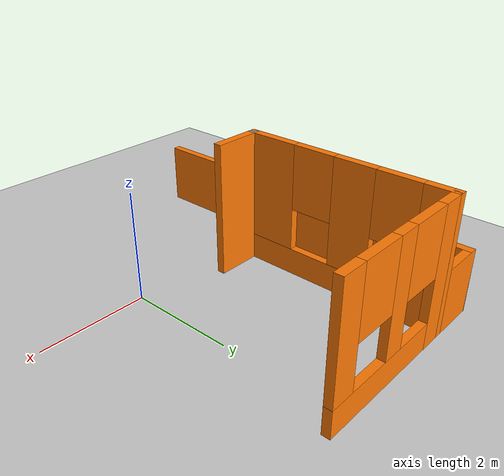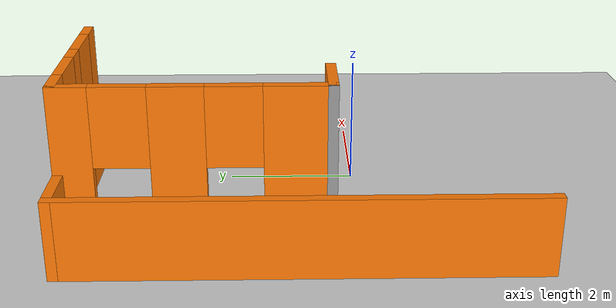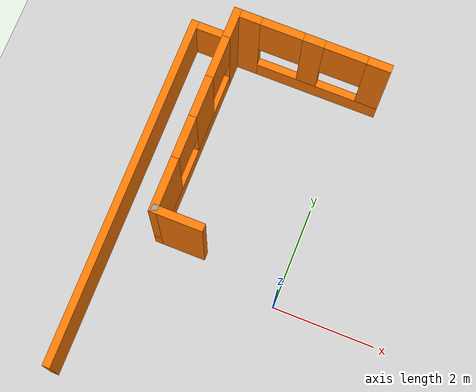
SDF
<sdf version="1.6">
 <world name="default">
  <model name="ground_plane">
   <static>1</static>
   <link name="link">
    <collision name="collision">
     <geometry><plane><normal>0 0 1</normal><size>100 100</size></plane></geometry>
     <surface>
      <contact><collide_bitmask>65535</collide_bitmask></contact>
      <friction><ode><mu>100</mu><mu2>50</mu2></ode></friction>
     </surface>
    </collision>
    <visual name="visual">
     <cast_shadows>0</cast_shadows>
     <geometry><plane><normal>0 0 1</normal><size>100 100</size></plane></geometry>
     <material>
      <script><uri>file://media/materials/scripts/gazebo.material</uri><name>Gazebo/Grey</name></script>
     </material>
    </visual>
   </link>
  </model>
  <model name="myhouse">
   <link name="Wall_1">
    <pose>-3.27785 1.94213 0 0 0 -1.5708</pose>
    <visual name="Wall_1_Visual">
     <pose>0 0 0.6 0 -0 0</pose>
     <geometry><box><size>7 0.15 1.2</size></box></geometry>
     <material>
      <script><uri>file://media/materials/scripts/gazebo.material</uri><name>Gazebo/Grey</name></script>
      <ambient>0.996078 0.47451 0.0196078 1</ambient>
      <shader type="pixel"/>
      <diffuse>0.7 0.7 0.7 1</diffuse>
      <specular>0.01 0.01 0.01 1</specular>
      <emissive>0 0 0 1</emissive>
     </material>
     <meta><layer>0</layer></meta>
    </visual>
    <collision name="Wall_1_Collision">
     <pose>0 0 0.6 0 -0 0</pose>
     <geometry><box><size>7 0.15 1.2</size></box></geometry>
     <surface>
      <friction>
       <ode><mu>1</mu><mu2>1</mu2><fdir1>0 0 0</fdir1><slip1>0</slip1><slip2>0</slip2></ode>
       <torsional>
        <coefficient>1</coefficient>
        <patch_radius>0</patch_radius>
        <surface_radius>0</surface_radius>
        <use_patch_radius>1</use_patch_radius>
        <ode><slip>0</slip></ode>
       </torsional>
      </friction>
      <bounce><restitution_coefficient>0</restitution_coefficient><threshold>1e+06</threshold></bounce>
      <contact>
       <collide_without_contact>0</collide_without_contact>
       <collide_without_contact_bitmask>1</collide_without_contact_bitmask>
       <collide_bitmask>1</collide_bitmask>
       <ode>
        <soft_cfm>0</soft_cfm>
        <soft_erp>0.2</soft_erp>
        <kp>1e+13</kp>
        <kd>1</kd>
        <max_vel>0.01</max_vel>
        <min_depth>0</min_depth>
       </ode>
       <bullet>
        <split_impulse>1</split_impulse>
        <split_impulse_penetration_threshold>-0.01</split_impulse_penetration_threshold>
        <soft_cfm>0</soft_cfm>
        <soft_erp>0.2</soft_erp>
        <kp>1e+13</kp>
        <kd>1</kd>
       </bullet>
      </contact>
     </surface>
    </collision>
   </link>
   <link name="Wall_17">
    <pose>-2.42773 3.44225 0 0 0 -1.57073</pose>
    <visual name="Wall_17_Visual_0">
     <pose>-1.71028 0 1.25 0 -0 0</pose>
     <geometry><box><size>0.579442 0.15 2.5</size></box></geometry>
     <material>
      <script><uri>file://media/materials/scripts/gazebo.material</uri><name>Gazebo/Grey</name></script>
      <ambient>0.996078 0.47451 0.0196078 1</ambient>
      <shader type="pixel"/>
      <diffuse>0.7 0.7 0.7 1</diffuse>
      <specular>0.01 0.01 0.01 1</specular>
      <emissive>0 0 0 1</emissive>
     </material>
     <meta><layer>0</layer></meta>
    </visual>
    <visual name="Wall_17_Visual_1">
     <pose>0.289721 0 0.25 0 -0 0</pose>
     <geometry><box><size>3.42056 0.15 0.5</size></box></geometry>
     <material>
      <script><uri>file://media/materials/scripts/gazebo.material</uri><name>Gazebo/Grey</name></script>
      <ambient>0.996078 0.47451 0.0196078 1</ambient>
      <shader type="pixel"/>
      <diffuse>0.7 0.7 0.7 1</diffuse>
      <specular>0.01 0.01 0.01 1</specular>
      <emissive>0 0 0 1</emissive>
     </material>
     <meta><layer>0</layer></meta>
    </visual>
    <visual name="Wall_17_Visual_2">
     <pose>-0.229084 0 1.5 0 -0 0</pose>
     <geometry><box><size>0.782948 0.15 2</size></box></geometry>
     <material>
      <script><uri>file://media/materials/scripts/gazebo.material</uri><name>Gazebo/Grey</name></script>
      <ambient>0.996078 0.47451 0.0196078 1</ambient>
      <shader type="pixel"/>
      <diffuse>0.7 0.7 0.7 1</diffuse>
      <specular>0.01 0.01 0.01 1</specular>
      <emissive>0 0 0 1</emissive>
     </material>
     <meta><layer>0</layer></meta>
    </visual>
    <visual name="Wall_17_Visual_3">
     <pose>1.4812 0 1.5 0 -0 0</pose>
     <geometry><box><size>1.03761 0.15 2</size></box></geometry>
     <material>
      <script><uri>file://media/materials/scripts/gazebo.material</uri><name>Gazebo/Grey</name></script>
      <ambient>0.996078 0.47451 0.0196078 1</ambient>
      <shader type="pixel"/>
      <diffuse>0.7 0.7 0.7 1</diffuse>
      <specular>0.01 0.01 0.01 1</specular>
      <emissive>0 0 0 1</emissive>
     </material>
     <meta><layer>0</layer></meta>
    </visual>
    <visual name="Wall_17_Visual_4">
     <pose>-1.02056 0 1.9 0 -0 0</pose>
     <geometry><box><size>0.8 0.15 1.2</size></box></geometry>
     <material>
      <script><uri>file://media/materials/scripts/gazebo.material</uri><name>Gazebo/Grey</name></script>
      <ambient>0.996078 0.47451 0.0196078 1</ambient>
      <shader type="pixel"/>
      <diffuse>0.7 0.7 0.7 1</diffuse>
      <specular>0.01 0.01 0.01 1</specular>
      <emissive>0 0 0 1</emissive>
     </material>
     <meta><layer>0</layer></meta>
    </visual>
    <visual name="Wall_17_Visual_5">
     <pose>0.562389 0 1.9 0 -0 0</pose>
     <geometry><box><size>0.8 0.15 1.2</size></box></geometry>
     <material>
      <script><uri>file://media/materials/scripts/gazebo.material</uri><name>Gazebo/Grey</name></script>
      <ambient>0.996078 0.47451 0.0196078 1</ambient>
      <shader type="pixel"/>
      <diffuse>0.7 0.7 0.7 1</diffuse>
      <specular>0.01 0.01 0.01 1</specular>
      <emissive>0 0 0 1</emissive>
     </material>
     <meta><layer>0</layer></meta>
    </visual>
    <collision name="Wall_17_Collision_0">
     <pose>-1.71028 0 1.25 0 -0 0</pose>
     <geometry><box><size>0.579442 0.15 2.5</size></box></geometry>
     <surface>
      <friction>
       <ode><mu>1</mu><mu2>1</mu2><fdir1>0 0 0</fdir1><slip1>0</slip1><slip2>0</slip2></ode>
       <torsional>
        <coefficient>1</coefficient>
        <patch_radius>0</patch_radius>
        <surface_radius>0</surface_radius>
        <use_patch_radius>1</use_patch_radius>
        <ode><slip>0</slip></ode>
       </torsional>
      </friction>
      <bounce><restitution_coefficient>0</restitution_coefficient><threshold>1e+06</threshold></bounce>
      <contact>
       <collide_without_contact>0</collide_without_contact>
       <collide_without_contact_bitmask>1</collide_without_contact_bitmask>
       <collide_bitmask>1</collide_bitmask>
       <ode>
        <soft_cfm>0</soft_cfm>
        <soft_erp>0.2</soft_erp>
        <kp>1e+13</kp>
        <kd>1</kd>
        <max_vel>0.01</max_vel>
        <min_depth>0</min_depth>
       </ode>
       <bullet>
        <split_impulse>1</split_impulse>
        <split_impulse_penetration_threshold>-0.01</split_impulse_penetration_threshold>
        <soft_cfm>0</soft_cfm>
        <soft_erp>0.2</soft_erp>
        <kp>1e+13</kp>
        <kd>1</kd>
       </bullet>
      </contact>
     </surface>
    </collision>
    <collision name="Wall_17_Collision_5">
     <pose>0.562389 0 1.9 0 -0 0</pose>
     <geometry><box><size>0.8 0.15 1.2</size></box></geometry>
     <surface>
      <friction>
       <ode><mu>1</mu><mu2>1</mu2><fdir1>0 0 0</fdir1><slip1>0</slip1><slip2>0</slip2></ode>
       <torsional>
        <coefficient>1</coefficient>
        <patch_radius>0</patch_radius>
        <surface_radius>0</surface_radius>
        <use_patch_radius>1</use_patch_radius>
        <ode><slip>0</slip></ode>
       </torsional>
      </friction>
      <bounce><restitution_coefficient>0</restitution_coefficient><threshold>1e+06</threshold></bounce>
      <contact>
       <collide_without_contact>0</collide_without_contact>
       <collide_without_contact_bitmask>1</collide_without_contact_bitmask>
       <collide_bitmask>1</collide_bitmask>
       <ode>
        <soft_cfm>0</soft_cfm>
        <soft_erp>0.2</soft_erp>
        <kp>1e+13</kp>
        <kd>1</kd>
        <max_vel>0.01</max_vel>
        <min_depth>0</min_depth>
       </ode>
       <bullet>
        <split_impulse>1</split_impulse>
        <split_impulse_penetration_threshold>-0.01</split_impulse_penetration_threshold>
        <soft_cfm>0</soft_cfm>
        <soft_erp>0.2</soft_erp>
        <kp>1e+13</kp>
        <kd>1</kd>
       </bullet>
      </contact>
     </surface>
    </collision>
    <collision name="Wall_17_Collision_3">
     <pose>1.4812 0 1.5 0 -0 0</pose>
     <geometry><box><size>1.03761 0.15 2</size></box></geometry>
     <surface>
      <friction>
       <ode><mu>1</mu><mu2>1</mu2><fdir1>0 0 0</fdir1><slip1>0</slip1><slip2>0</slip2></ode>
       <torsional>
        <coefficient>1</coefficient>
        <patch_radius>0</patch_radius>
        <surface_radius>0</surface_radius>
        <use_patch_radius>1</use_patch_radius>
        <ode><slip>0</slip></ode>
       </torsional>
      </friction>
      <bounce><restitution_coefficient>0</restitution_coefficient><threshold>1e+06</threshold></bounce>
      <contact>
       <collide_without_contact>0</collide_without_contact>
       <collide_without_contact_bitmask>1</collide_without_contact_bitmask>
       <collide_bitmask>1</collide_bitmask>
       <ode>
        <soft_cfm>0</soft_cfm>
        <soft_erp>0.2</soft_erp>
        <kp>1e+13</kp>
        <kd>1</kd>
        <max_vel>0.01</max_vel>
        <min_depth>0</min_depth>
       </ode>
       <bullet>
        <split_impulse>1</split_impulse>
        <split_impulse_penetration_threshold>-0.01</split_impulse_penetration_threshold>
        <soft_cfm>0</soft_cfm>
        <soft_erp>0.2</soft_erp>
        <kp>1e+13</kp>
        <kd>1</kd>
       </bullet>
      </contact>
     </surface>
    </collision>
    <collision name="Wall_17_Collision_1">
     <pose>0.289721 0 0.25 0 -0 0</pose>
     <geometry><box><size>3.42056 0.15 0.5</size></box></geometry>
     <surface>
      <friction>
       <ode><mu>1</mu><mu2>1</mu2><fdir1>0 0 0</fdir1><slip1>0</slip1><slip2>0</slip2></ode>
       <torsional>
        <coefficient>1</coefficient>
        <patch_radius>0</patch_radius>
        <surface_radius>0</surface_radius>
        <use_patch_radius>1</use_patch_radius>
        <ode><slip>0</slip></ode>
       </torsional>
      </friction>
      <bounce><restitution_coefficient>0</restitution_coefficient><threshold>1e+06</threshold></bounce>
      <contact>
       <collide_without_contact>0</collide_without_contact>
       <collide_without_contact_bitmask>1</collide_without_contact_bitmask>
       <collide_bitmask>1</collide_bitmask>
       <ode>
        <soft_cfm>0</soft_cfm>
        <soft_erp>0.2</soft_erp>
        <kp>1e+13</kp>
        <kd>1</kd>
        <max_vel>0.01</max_vel>
        <min_depth>0</min_depth>
       </ode>
       <bullet>
        <split_impulse>1</split_impulse>
        <split_impulse_penetration_threshold>-0.01</split_impulse_penetration_threshold>
        <soft_cfm>0</soft_cfm>
        <soft_erp>0.2</soft_erp>
        <kp>1e+13</kp>
        <kd>1</kd>
       </bullet>
      </contact>
     </surface>
    </collision>
    <collision name="Wall_17_Collision_2">
     <pose>-0.229084 0 1.5 0 -0 0</pose>
     <geometry><box><size>0.782948 0.15 2</size></box></geometry>
     <surface>
      <friction>
       <ode><mu>1</mu><mu2>1</mu2><fdir1>0 0 0</fdir1><slip1>0</slip1><slip2>0</slip2></ode>
       <torsional>
        <coefficient>1</coefficient>
        <patch_radius>0</patch_radius>
        <surface_radius>0</surface_radius>
        <use_patch_radius>1</use_patch_radius>
        <ode><slip>0</slip></ode>
       </torsional>
      </friction>
      <bounce><restitution_coefficient>0</restitution_coefficient><threshold>1e+06</threshold></bounce>
      <contact>
       <collide_without_contact>0</collide_without_contact>
       <collide_without_contact_bitmask>1</collide_without_contact_bitmask>
       <collide_bitmask>1</collide_bitmask>
       <ode>
        <soft_cfm>0</soft_cfm>
        <soft_erp>0.2</soft_erp>
        <kp>1e+13</kp>
        <kd>1</kd>
        <max_vel>0.01</max_vel>
        <min_depth>0</min_depth>
       </ode>
       <bullet>
        <split_impulse>1</split_impulse>
        <split_impulse_penetration_threshold>-0.01</split_impulse_penetration_threshold>
        <soft_cfm>0</soft_cfm>
        <soft_erp>0.2</soft_erp>
        <kp>1e+13</kp>
        <kd>1</kd>
       </bullet>
      </contact>
     </surface>
    </collision>
    <collision name="Wall_17_Collision_4">
     <pose>-1.02056 0 1.9 0 -0 0</pose>
     <geometry><box><size>0.8 0.15 1.2</size></box></geometry>
     <surface>
      <friction>
       <ode><mu>1</mu><mu2>1</mu2><fdir1>0 0 0</fdir1><slip1>0</slip1><slip2>0</slip2></ode>
       <torsional>
        <coefficient>1</coefficient>
        <patch_radius>0</patch_radius>
        <surface_radius>0</surface_radius>
        <use_patch_radius>1</use_patch_radius>
        <ode><slip>0</slip></ode>
       </torsional>
      </friction>
      <bounce><restitution_coefficient>0</restitution_coefficient><threshold>1e+06</threshold></bounce>
      <contact>
       <collide_without_contact>0</collide_without_contact>
       <collide_without_contact_bitmask>1</collide_without_contact_bitmask>
       <collide_bitmask>1</collide_bitmask>
       <ode>
        <soft_cfm>0</soft_cfm>
        <soft_erp>0.2</soft_erp>
        <kp>1e+13</kp>
        <kd>1</kd>
        <max_vel>0.01</max_vel>
        <min_depth>0</min_depth>
       </ode>
       <bullet>
        <split_impulse>1</split_impulse>
        <split_impulse_penetration_threshold>-0.01</split_impulse_penetration_threshold>
        <soft_cfm>0</soft_cfm>
        <soft_erp>0.2</soft_erp>
        <kp>1e+13</kp>
        <kd>1</kd>
       </bullet>
      </contact>
     </surface>
    </collision>
   </link>
   <link name="Wall_25">
    <pose>-2.42762 1.51737 0 0 -0 0</pose>
    <visual name="Wall_25_Visual">
     <pose>0 0 1.25 0 -0 0</pose>
     <geometry><box><size>0.15 0.15 2.5</size></box></geometry>
     <material>
      <script><uri>file://media/materials/scripts/gazebo.material</uri><name>Gazebo/Grey</name></script>
      <ambient>1 1 1 1</ambient>
      <shader type="pixel"/>
      <diffuse>0.7 0.7 0.7 1</diffuse>
      <specular>0.01 0.01 0.01 1</specular>
      <emissive>0 0 0 1</emissive>
     </material>
     <meta><layer>0</layer></meta>
    </visual>
    <collision name="Wall_25_Collision">
     <pose>0 0 1.25 0 -0 0</pose>
     <geometry><box><size>0.15 0.15 2.5</size></box></geometry>
     <surface>
      <friction>
       <ode><mu>1</mu><mu2>1</mu2><fdir1>0 0 0</fdir1><slip1>0</slip1><slip2>0</slip2></ode>
       <torsional>
        <coefficient>1</coefficient>
        <patch_radius>0</patch_radius>
        <surface_radius>0</surface_radius>
        <use_patch_radius>1</use_patch_radius>
        <ode><slip>0</slip></ode>
       </torsional>
      </friction>
      <bounce><restitution_coefficient>0</restitution_coefficient><threshold>1e+06</threshold></bounce>
      <contact>
       <collide_without_contact>0</collide_without_contact>
       <collide_without_contact_bitmask>1</collide_without_contact_bitmask>
       <collide_bitmask>1</collide_bitmask>
       <ode>
        <soft_cfm>0</soft_cfm>
        <soft_erp>0.2</soft_erp>
        <kp>1e+13</kp>
        <kd>1</kd>
        <max_vel>0.01</max_vel>
        <min_depth>0</min_depth>
       </ode>
       <bullet>
        <split_impulse>1</split_impulse>
        <split_impulse_penetration_threshold>-0.01</split_impulse_penetration_threshold>
        <soft_cfm>0</soft_cfm>
        <soft_erp>0.2</soft_erp>
        <kp>1e+13</kp>
        <kd>1</kd>
       </bullet>
      </contact>
     </surface>
    </collision>
   </link>
   <link name="Wall_26">
    <pose>-2.00262 1.51737 0 0 -0 0</pose>
    <visual name="Wall_26_Visual">
     <pose>0 0 1.25 0 -0 0</pose>
     <geometry><box><size>1 0.15 2.5</size></box></geometry>
     <material>
      <script><uri>file://media/materials/scripts/gazebo.material</uri><name>Gazebo/Grey</name></script>
      <ambient>0.996078 0.47451 0.0196078 1</ambient>
      <shader type="pixel"/>
      <diffuse>0.7 0.7 0.7 1</diffuse>
      <specular>0.01 0.01 0.01 1</specular>
      <emissive>0 0 0 1</emissive>
     </material>
     <meta><layer>0</layer></meta>
    </visual>
    <collision name="Wall_26_Collision">
     <pose>0 0 1.25 0 -0 0</pose>
     <geometry><box><size>1 0.15 2.5</size></box></geometry>
     <surface>
      <friction>
       <ode><mu>1</mu><mu2>1</mu2><fdir1>0 0 0</fdir1><slip1>0</slip1><slip2>0</slip2></ode>
       <torsional>
        <coefficient>1</coefficient>
        <patch_radius>0</patch_radius>
        <surface_radius>0</surface_radius>
        <use_patch_radius>1</use_patch_radius>
        <ode><slip>0</slip></ode>
       </torsional>
      </friction>
      <bounce><restitution_coefficient>0</restitution_coefficient><threshold>1e+06</threshold></bounce>
      <contact>
       <collide_without_contact>0</collide_without_contact>
       <collide_without_contact_bitmask>1</collide_without_contact_bitmask>
       <collide_bitmask>1</collide_bitmask>
       <ode>
        <soft_cfm>0</soft_cfm>
        <soft_erp>0.2</soft_erp>
        <kp>1e+13</kp>
        <kd>1</kd>
        <max_vel>0.01</max_vel>
        <min_depth>0</min_depth>
       </ode>
       <bullet>
        <split_impulse>1</split_impulse>
        <split_impulse_penetration_threshold>-0.01</split_impulse_penetration_threshold>
        <soft_cfm>0</soft_cfm>
        <soft_erp>0.2</soft_erp>
        <kp>1e+13</kp>
        <kd>1</kd>
       </bullet>
      </contact>
     </surface>
    </collision>
   </link>
   <link name="Wall_8">
    <pose>-2.85285 5.36713 0 0 -0 0</pose>
    <visual name="Wall_8_Visual">
     <pose>0 0 0.6 0 -0 0</pose>
     <geometry><box><size>1 0.15 1.2</size></box></geometry>
     <material>
      <script><uri>file://media/materials/scripts/gazebo.material</uri><name>Gazebo/Grey</name></script>
      <ambient>0.996078 0.47451 0.0196078 1</ambient>
      <shader type="pixel"/>
      <diffuse>0.7 0.7 0.7 1</diffuse>
      <specular>0.01 0.01 0.01 1</specular>
      <emissive>0 0 0 1</emissive>
     </material>
     <meta><layer>0</layer></meta>
    </visual>
    <collision name="Wall_8_Collision">
     <pose>0 0 0.6 0 -0 0</pose>
     <geometry><box><size>1 0.15 1.2</size></box></geometry>
     <surface>
      <friction>
       <ode><mu>1</mu><mu2>1</mu2><fdir1>0 0 0</fdir1><slip1>0</slip1><slip2>0</slip2></ode>
       <torsional>
        <coefficient>1</coefficient>
        <patch_radius>0</patch_radius>
        <surface_radius>0</surface_radius>
        <use_patch_radius>1</use_patch_radius>
        <ode><slip>0</slip></ode>
       </torsional>
      </friction>
      <bounce><restitution_coefficient>0</restitution_coefficient><threshold>1e+06</threshold></bounce>
      <contact>
       <collide_without_contact>0</collide_without_contact>
       <collide_without_contact_bitmask>1</collide_without_contact_bitmask>
       <collide_bitmask>1</collide_bitmask>
       <ode>
        <soft_cfm>0</soft_cfm>
        <soft_erp>0.2</soft_erp>
        <kp>1e+13</kp>
        <kd>1</kd>
        <max_vel>0.01</max_vel>
        <min_depth>0</min_depth>
       </ode>
       <bullet>
        <split_impulse>1</split_impulse>
        <split_impulse_penetration_threshold>-0.01</split_impulse_penetration_threshold>
        <soft_cfm>0</soft_cfm>
        <soft_erp>0.2</soft_erp>
        <kp>1e+13</kp>
        <kd>1</kd>
       </bullet>
      </contact>
     </surface>
    </collision>
   </link>
   <link name="Wall_9">
    <pose>-1.00273 5.36725 0 0 -0 8.2e-05</pose>
    <visual name="Wall_9_Visual_2">
     <pose>0.048871 0 1.5 0 -0 0</pose>
     <geometry><box><size>0.396177 0.15 2</size></box></geometry>
     <material>
      <script><uri>file://media/materials/scripts/gazebo.material</uri><name>Gazebo/Grey</name></script>
      <ambient>0.996078 0.47451 0.0196078 1</ambient>
      <shader type="pixel"/>
      <diffuse>0.7 0.7 0.7 1</diffuse>
      <specular>0.01 0.01 0.01 1</specular>
      <emissive>0 0 0 1</emissive>
     </material>
     <meta><layer>0</layer></meta>
    </visual>
    <visual name="Wall_9_Visual_0">
     <pose>-1.22461 0 1.25 0 -0 0</pose>
     <geometry><box><size>0.550783 0.15 2.5</size></box></geometry>
     <material>
      <script><uri>file://media/materials/scripts/gazebo.material</uri><name>Gazebo/Grey</name></script>
      <ambient>0.996078 0.47451 0.0196078 1</ambient>
      <shader type="pixel"/>
      <diffuse>0.7 0.7 0.7 1</diffuse>
      <specular>0.01 0.01 0.01 1</specular>
      <emissive>0 0 0 1</emissive>
     </material>
     <meta><layer>0</layer></meta>
    </visual>
    <visual name="Wall_9_Visual_1">
     <pose>0.275391 0 0.25 0 -0 0</pose>
     <geometry><box><size>2.44922 0.15 0.5</size></box></geometry>
     <material>
      <script><uri>file://media/materials/scripts/gazebo.material</uri><name>Gazebo/Grey</name></script>
      <ambient>0.996078 0.47451 0.0196078 1</ambient>
      <shader type="pixel"/>
      <diffuse>0.7 0.7 0.7 1</diffuse>
      <specular>0.01 0.01 0.01 1</specular>
      <emissive>0 0 0 1</emissive>
     </material>
     <meta><layer>0</layer></meta>
    </visual>
    <visual name="Wall_9_Visual_3">
     <pose>1.27348 0 1.5 0 -0 0</pose>
     <geometry><box><size>0.45304 0.15 2</size></box></geometry>
     <material>
      <script><uri>file://media/materials/scripts/gazebo.material</uri><name>Gazebo/Grey</name></script>
      <ambient>0.996078 0.47451 0.0196078 1</ambient>
      <shader type="pixel"/>
      <diffuse>0.7 0.7 0.7 1</diffuse>
      <specular>0.01 0.01 0.01 1</specular>
      <emissive>0 0 0 1</emissive>
     </material>
     <meta><layer>0</layer></meta>
    </visual>
    <visual name="Wall_9_Visual_4">
     <pose>-0.549217 0 1.9 0 -0 0</pose>
     <geometry><box><size>0.8 0.15 1.2</size></box></geometry>
     <material>
      <script><uri>file://media/materials/scripts/gazebo.material</uri><name>Gazebo/Grey</name></script>
      <ambient>0.996078 0.47451 0.0196078 1</ambient>
      <shader type="pixel"/>
      <diffuse>0.7 0.7 0.7 1</diffuse>
      <specular>0.01 0.01 0.01 1</specular>
      <emissive>0 0 0 1</emissive>
     </material>
     <meta><layer>0</layer></meta>
    </visual>
    <visual name="Wall_9_Visual_5">
     <pose>0.64696 0 1.9 0 -0 0</pose>
     <geometry><box><size>0.8 0.15 1.2</size></box></geometry>
     <material>
      <script><uri>file://media/materials/scripts/gazebo.material</uri><name>Gazebo/Grey</name></script>
      <ambient>0.996078 0.47451 0.0196078 1</ambient>
      <shader type="pixel"/>
      <diffuse>0.7 0.7 0.7 1</diffuse>
      <specular>0.01 0.01 0.01 1</specular>
      <emissive>0 0 0 1</emissive>
     </material>
     <meta><layer>0</layer></meta>
    </visual>
    <collision name="Wall_9_Collision_0">
     <pose>-1.22461 0 1.25 0 -0 0</pose>
     <geometry><box><size>0.550783 0.15 2.5</size></box></geometry>
     <surface>
      <friction>
       <ode><mu>1</mu><mu2>1</mu2><fdir1>0 0 0</fdir1><slip1>0</slip1><slip2>0</slip2></ode>
       <torsional>
        <coefficient>1</coefficient>
        <patch_radius>0</patch_radius>
        <surface_radius>0</surface_radius>
        <use_patch_radius>1</use_patch_radius>
        <ode><slip>0</slip></ode>
       </torsional>
      </friction>
      <bounce><restitution_coefficient>0</restitution_coefficient><threshold>1e+06</threshold></bounce>
      <contact>
       <collide_without_contact>0</collide_without_contact>
       <collide_without_contact_bitmask>1</collide_without_contact_bitmask>
       <collide_bitmask>1</collide_bitmask>
       <ode>
        <soft_cfm>0</soft_cfm>
        <soft_erp>0.2</soft_erp>
        <kp>1e+13</kp>
        <kd>1</kd>
        <max_vel>0.01</max_vel>
        <min_depth>0</min_depth>
       </ode>
       <bullet>
        <split_impulse>1</split_impulse>
        <split_impulse_penetration_threshold>-0.01</split_impulse_penetration_threshold>
        <soft_cfm>0</soft_cfm>
        <soft_erp>0.2</soft_erp>
        <kp>1e+13</kp>
        <kd>1</kd>
       </bullet>
      </contact>
     </surface>
    </collision>
    <collision name="Wall_9_Collision_2">
     <pose>0.048871 0 1.5 0 -0 0</pose>
     <geometry><box><size>0.396177 0.15 2</size></box></geometry>
     <surface>
      <friction>
       <ode><mu>1</mu><mu2>1</mu2><fdir1>0 0 0</fdir1><slip1>0</slip1><slip2>0</slip2></ode>
       <torsional>
        <coefficient>1</coefficient>
        <patch_radius>0</patch_radius>
        <surface_radius>0</surface_radius>
        <use_patch_radius>1</use_patch_radius>
        <ode><slip>0</slip></ode>
       </torsional>
      </friction>
      <bounce><restitution_coefficient>0</restitution_coefficient><threshold>1e+06</threshold></bounce>
      <contact>
       <collide_without_contact>0</collide_without_contact>
       <collide_without_contact_bitmask>1</collide_without_contact_bitmask>
       <collide_bitmask>1</collide_bitmask>
       <ode>
        <soft_cfm>0</soft_cfm>
        <soft_erp>0.2</soft_erp>
        <kp>1e+13</kp>
        <kd>1</kd>
        <max_vel>0.01</max_vel>
        <min_depth>0</min_depth>
       </ode>
       <bullet>
        <split_impulse>1</split_impulse>
        <split_impulse_penetration_threshold>-0.01</split_impulse_penetration_threshold>
        <soft_cfm>0</soft_cfm>
        <soft_erp>0.2</soft_erp>
        <kp>1e+13</kp>
        <kd>1</kd>
       </bullet>
      </contact>
     </surface>
    </collision>
    <collision name="Wall_9_Collision_1">
     <pose>0.275391 0 0.25 0 -0 0</pose>
     <geometry><box><size>2.44922 0.15 0.5</size></box></geometry>
     <surface>
      <friction>
       <ode><mu>1</mu><mu2>1</mu2><fdir1>0 0 0</fdir1><slip1>0</slip1><slip2>0</slip2></ode>
       <torsional>
        <coefficient>1</coefficient>
        <patch_radius>0</patch_radius>
        <surface_radius>0</surface_radius>
        <use_patch_radius>1</use_patch_radius>
        <ode><slip>0</slip></ode>
       </torsional>
      </friction>
      <bounce><restitution_coefficient>0</restitution_coefficient><threshold>1e+06</threshold></bounce>
      <contact>
       <collide_without_contact>0</collide_without_contact>
       <collide_without_contact_bitmask>1</collide_without_contact_bitmask>
       <collide_bitmask>1</collide_bitmask>
       <ode>
        <soft_cfm>0</soft_cfm>
        <soft_erp>0.2</soft_erp>
        <kp>1e+13</kp>
        <kd>1</kd>
        <max_vel>0.01</max_vel>
        <min_depth>0</min_depth>
       </ode>
       <bullet>
        <split_impulse>1</split_impulse>
        <split_impulse_penetration_threshold>-0.01</split_impulse_penetration_threshold>
        <soft_cfm>0</soft_cfm>
        <soft_erp>0.2</soft_erp>
        <kp>1e+13</kp>
        <kd>1</kd>
       </bullet>
      </contact>
     </surface>
    </collision>
    <collision name="Wall_9_Collision_3">
     <pose>1.27348 0 1.5 0 -0 0</pose>
     <geometry><box><size>0.45304 0.15 2</size></box></geometry>
     <surface>
      <friction>
       <ode><mu>1</mu><mu2>1</mu2><fdir1>0 0 0</fdir1><slip1>0</slip1><slip2>0</slip2></ode>
       <torsional>
        <coefficient>1</coefficient>
        <patch_radius>0</patch_radius>
        <surface_radius>0</surface_radius>
        <use_patch_radius>1</use_patch_radius>
        <ode><slip>0</slip></ode>
       </torsional>
      </friction>
      <bounce><restitution_coefficient>0</restitution_coefficient><threshold>1e+06</threshold></bounce>
      <contact>
       <collide_without_contact>0</collide_without_contact>
       <collide_without_contact_bitmask>1</collide_without_contact_bitmask>
       <collide_bitmask>1</collide_bitmask>
       <ode>
        <soft_cfm>0</soft_cfm>
        <soft_erp>0.2</soft_erp>
        <kp>1e+13</kp>
        <kd>1</kd>
        <max_vel>0.01</max_vel>
        <min_depth>0</min_depth>
       </ode>
       <bullet>
        <split_impulse>1</split_impulse>
        <split_impulse_penetration_threshold>-0.01</split_impulse_penetration_threshold>
        <soft_cfm>0</soft_cfm>
        <soft_erp>0.2</soft_erp>
        <kp>1e+13</kp>
        <kd>1</kd>
       </bullet>
      </contact>
     </surface>
    </collision>
    <collision name="Wall_9_Collision_4">
     <pose>-0.549217 0 1.9 0 -0 0</pose>
     <geometry><box><size>0.8 0.15 1.2</size></box></geometry>
     <surface>
      <friction>
       <ode><mu>1</mu><mu2>1</mu2><fdir1>0 0 0</fdir1><slip1>0</slip1><slip2>0</slip2></ode>
       <torsional>
        <coefficient>1</coefficient>
        <patch_radius>0</patch_radius>
        <surface_radius>0</surface_radius>
        <use_patch_radius>1</use_patch_radius>
        <ode><slip>0</slip></ode>
       </torsional>
      </friction>
      <bounce><restitution_coefficient>0</restitution_coefficient><threshold>1e+06</threshold></bounce>
      <contact>
       <collide_without_contact>0</collide_without_contact>
       <collide_without_contact_bitmask>1</collide_without_contact_bitmask>
       <collide_bitmask>1</collide_bitmask>
       <ode>
        <soft_cfm>0</soft_cfm>
        <soft_erp>0.2</soft_erp>
        <kp>1e+13</kp>
        <kd>1</kd>
        <max_vel>0.01</max_vel>
        <min_depth>0</min_depth>
       </ode>
       <bullet>
        <split_impulse>1</split_impulse>
        <split_impulse_penetration_threshold>-0.01</split_impulse_penetration_threshold>
        <soft_cfm>0</soft_cfm>
        <soft_erp>0.2</soft_erp>
        <kp>1e+13</kp>
        <kd>1</kd>
       </bullet>
      </contact>
     </surface>
    </collision>
    <collision name="Wall_9_Collision_5">
     <pose>0.64696 0 1.9 0 -0 0</pose>
     <geometry><box><size>0.8 0.15 1.2</size></box></geometry>
     <surface>
      <friction>
       <ode><mu>1</mu><mu2>1</mu2><fdir1>0 0 0</fdir1><slip1>0</slip1><slip2>0</slip2></ode>
       <torsional>
        <coefficient>1</coefficient>
        <patch_radius>0</patch_radius>
        <surface_radius>0</surface_radius>
        <use_patch_radius>1</use_patch_radius>
        <ode><slip>0</slip></ode>
       </torsional>
      </friction>
      <bounce><restitution_coefficient>0</restitution_coefficient><threshold>1e+06</threshold></bounce>
      <contact>
       <collide_without_contact>0</collide_without_contact>
       <collide_without_contact_bitmask>1</collide_without_contact_bitmask>
       <collide_bitmask>1</collide_bitmask>
       <ode>
        <soft_cfm>0</soft_cfm>
        <soft_erp>0.2</soft_erp>
        <kp>1e+13</kp>
        <kd>1</kd>
        <max_vel>0.01</max_vel>
        <min_depth>0</min_depth>
       </ode>
       <bullet>
        <split_impulse>1</split_impulse>
        <split_impulse_penetration_threshold>-0.01</split_impulse_penetration_threshold>
        <soft_cfm>0</soft_cfm>
        <soft_erp>0.2</soft_erp>
        <kp>1e+13</kp>
        <kd>1</kd>
       </bullet>
      </contact>
     </surface>
    </collision>
   </link>
   <static>1</static>
   <pose>-0.02726 -1.07593 0 0 -0 0</pose>
  </model>
 </world>
</sdf>
